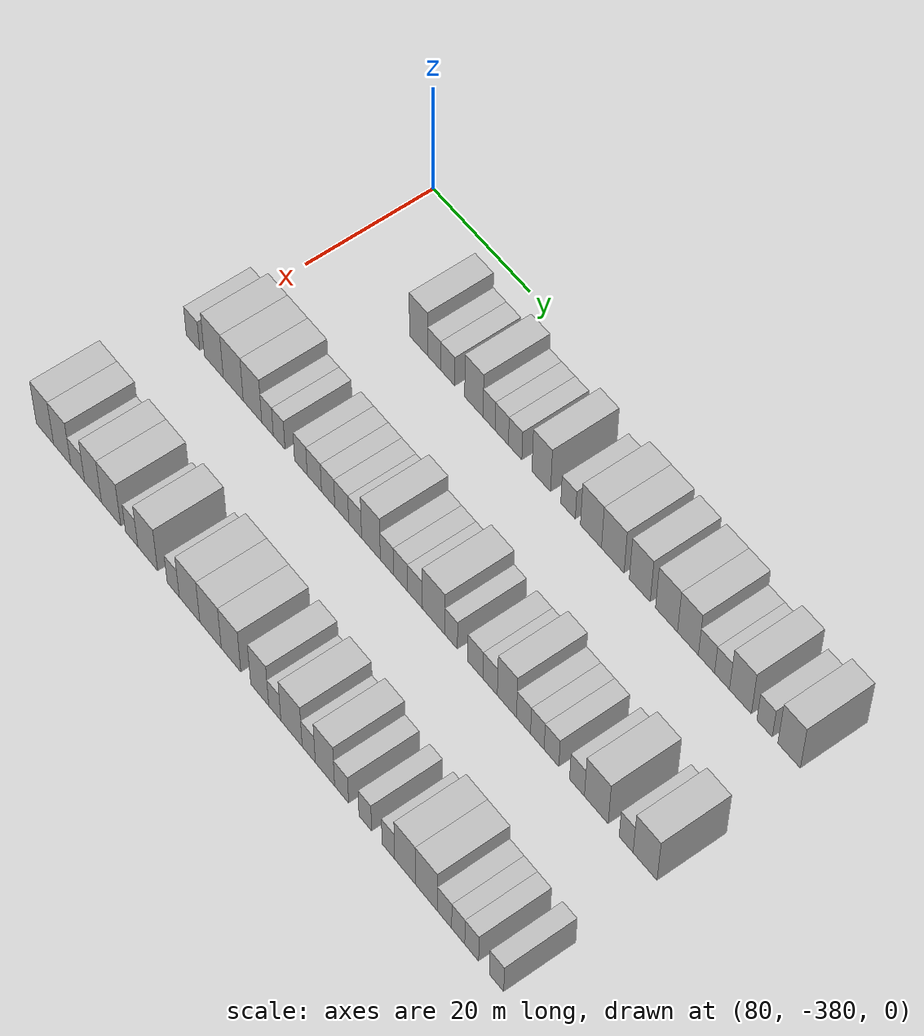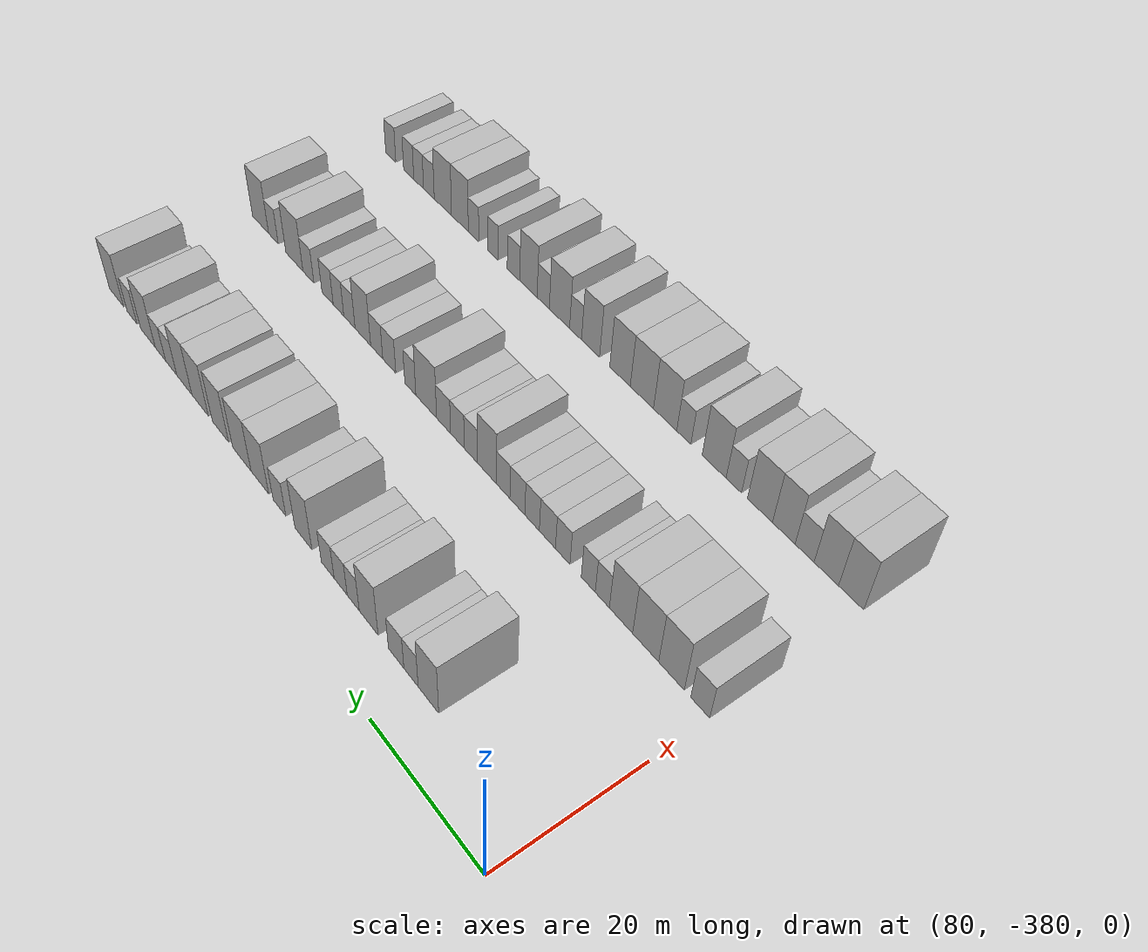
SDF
<sdf version="1.6">
 <world name="default">
  <model name="building_570">
   <static>1</static>
   <pose>91.0000 -361.6273 0 0.000000 0.000000 0.000000</pose>
   <link name="link">
    <pose>0 0 4.50 0 0 0</pose>
    <collision name="collision"><geometry><box><size>10.0000 3.7331 9.0000</size></box></geometry></collision>
    <visual name="visual">
     <cast_shadows>0</cast_shadows>
     <geometry><box><size>10.0000 3.7331 9.0000</size></box></geometry>
     <material>
      <script>
       <uri>model://HANNAS_wall/materials/scripts</uri>
       <uri>model://HANNAS_wall/materials/textures</uri>
       <name>vrc/HANNAS_wall</name>
      </script>
     </material>
    </visual>
   </link>
  </model>
  <model name="building_571">
   <static>1</static>
   <pose>91.0000 -358.4364 0 0.000000 0.000000 0.000000</pose>
   <link name="link">
    <pose>0 0 3.00 0 0 0</pose>
    <collision name="collision"><geometry><box><size>10.0000 2.6488 6.0000</size></box></geometry></collision>
    <visual name="visual">
     <cast_shadows>0</cast_shadows>
     <geometry><box><size>10.0000 2.6488 6.0000</size></box></geometry>
     <material>
      <script>
       <uri>model://HANNAS_wall/materials/scripts</uri>
       <uri>model://HANNAS_wall/materials/textures</uri>
       <name>vrc/HANNAS_wall</name>
      </script>
     </material>
    </visual>
   </link>
  </model>
  <model name="building_572">
   <static>1</static>
   <pose>91.0000 -355.6492 0 0.000000 0.000000 0.000000</pose>
   <link name="link">
    <pose>0 0 3.00 0 0 0</pose>
    <collision name="collision"><geometry><box><size>10.0000 2.9255 6.0000</size></box></geometry></collision>
    <visual name="visual">
     <cast_shadows>0</cast_shadows>
     <geometry><box><size>10.0000 2.9255 6.0000</size></box></geometry>
     <material>
      <script>
       <uri>model://HANNAS_wall/materials/scripts</uri>
       <uri>model://HANNAS_wall/materials/textures</uri>
       <name>vrc/HANNAS_wall</name>
      </script>
     </material>
    </visual>
   </link>
  </model>
  <model name="building_573">
   <static>1</static>
   <pose>91.0000 -350.3255 0 0.000000 0.000000 0.000000</pose>
   <link name="link">
    <pose>0 0 4.50 0 0 0</pose>
    <collision name="collision"><geometry><box><size>10.0000 3.7219 9.0000</size></box></geometry></collision>
    <visual name="visual">
     <cast_shadows>0</cast_shadows>
     <geometry><box><size>10.0000 3.7219 9.0000</size></box></geometry>
     <material>
      <script>
       <uri>model://HANNAS_wall/materials/scripts</uri>
       <uri>model://HANNAS_wall/materials/textures</uri>
       <name>vrc/HANNAS_wall</name>
      </script>
     </material>
    </visual>
   </link>
  </model>
  <model name="building_574">
   <static>1</static>
   <pose>91.0000 -347.2628 0 0.000000 0.000000 0.000000</pose>
   <link name="link">
    <pose>0 0 3.00 0 0 0</pose>
    <collision name="collision"><geometry><box><size>10.0000 2.4035 6.0000</size></box></geometry></collision>
    <visual name="visual">
     <cast_shadows>0</cast_shadows>
     <geometry><box><size>10.0000 2.4035 6.0000</size></box></geometry>
     <material>
      <script>
       <uri>model://HANNAS_wall/materials/scripts</uri>
       <uri>model://HANNAS_wall/materials/textures</uri>
       <name>vrc/HANNAS_wall</name>
      </script>
     </material>
    </visual>
   </link>
  </model>
  <model name="building_575">
   <static>1</static>
   <pose>91.0000 -344.7207 0 0.000000 0.000000 0.000000</pose>
   <link name="link">
    <pose>0 0 3.00 0 0 0</pose>
    <collision name="collision"><geometry><box><size>10.0000 2.6806 6.0000</size></box></geometry></collision>
    <visual name="visual">
     <cast_shadows>0</cast_shadows>
     <geometry><box><size>10.0000 2.6806 6.0000</size></box></geometry>
     <material>
      <script>
       <uri>model://HANNAS_wall/materials/scripts</uri>
       <uri>model://HANNAS_wall/materials/textures</uri>
       <name>vrc/HANNAS_wall</name>
      </script>
     </material>
    </visual>
   </link>
  </model>
  <model name="building_576">
   <static>1</static>
   <pose>91.0000 -342.0457 0 0.000000 0.000000 0.000000</pose>
   <link name="link">
    <pose>0 0 3.00 0 0 0</pose>
    <collision name="collision"><geometry><box><size>10.0000 2.6695 6.0000</size></box></geometry></collision>
    <visual name="visual">
     <cast_shadows>0</cast_shadows>
     <geometry><box><size>10.0000 2.6695 6.0000</size></box></geometry>
     <material>
      <script>
       <uri>model://HANNAS_wall/materials/scripts</uri>
       <uri>model://HANNAS_wall/materials/textures</uri>
       <name>vrc/HANNAS_wall</name>
      </script>
     </material>
    </visual>
   </link>
  </model>
  <model name="building_577">
   <static>1</static>
   <pose>91.0000 -336.8740 0 0.000000 0.000000 0.000000</pose>
   <link name="link">
    <pose>0 0 4.50 0 0 0</pose>
    <collision name="collision"><geometry><box><size>10.0000 3.6738 9.0000</size></box></geometry></collision>
    <visual name="visual">
     <cast_shadows>0</cast_shadows>
     <geometry><box><size>10.0000 3.6738 9.0000</size></box></geometry>
     <material>
      <script>
       <uri>model://HANNAS_wall/materials/scripts</uri>
       <uri>model://HANNAS_wall/materials/textures</uri>
       <name>vrc/HANNAS_wall</name>
      </script>
     </material>
    </visual>
   </link>
  </model>
  <model name="building_578">
   <static>1</static>
   <pose>91.0000 -331.6234 0 0.000000 0.000000 0.000000</pose>
   <link name="link">
    <pose>0 0 3.00 0 0 0</pose>
    <collision name="collision"><geometry><box><size>10.0000 2.8275 6.0000</size></box></geometry></collision>
    <visual name="visual">
     <cast_shadows>0</cast_shadows>
     <geometry><box><size>10.0000 2.8275 6.0000</size></box></geometry>
     <material>
      <script>
       <uri>model://HANNAS_wall/materials/scripts</uri>
       <uri>model://HANNAS_wall/materials/textures</uri>
       <name>vrc/HANNAS_wall</name>
      </script>
     </material>
    </visual>
   </link>
  </model>
  <model name="building_579">
   <static>1</static>
   <pose>91.0000 -327.1767 0 0.000000 0.000000 0.000000</pose>
   <link name="link">
    <pose>0 0 4.50 0 0 0</pose>
    <collision name="collision"><geometry><box><size>10.0000 4.0658 9.0000</size></box></geometry></collision>
    <visual name="visual">
     <cast_shadows>0</cast_shadows>
     <geometry><box><size>10.0000 4.0658 9.0000</size></box></geometry>
     <material>
      <script>
       <uri>model://HANNAS_wall/materials/scripts</uri>
       <uri>model://HANNAS_wall/materials/textures</uri>
       <name>vrc/HANNAS_wall</name>
      </script>
     </material>
    </visual>
   </link>
  </model>
  <model name="building_580">
   <static>1</static>
   <pose>91.0000 -322.9775 0 0.000000 0.000000 0.000000</pose>
   <link name="link">
    <pose>0 0 4.50 0 0 0</pose>
    <collision name="collision"><geometry><box><size>10.0000 4.3327 9.0000</size></box></geometry></collision>
    <visual name="visual">
     <cast_shadows>0</cast_shadows>
     <geometry><box><size>10.0000 4.3327 9.0000</size></box></geometry>
     <material>
      <script>
       <uri>model://HANNAS_wall/materials/scripts</uri>
       <uri>model://HANNAS_wall/materials/textures</uri>
       <name>vrc/HANNAS_wall</name>
      </script>
     </material>
    </visual>
   </link>
  </model>
  <model name="building_581">
   <static>1</static>
   <pose>91.0000 -317.8311 0 0.000000 0.000000 0.000000</pose>
   <link name="link">
    <pose>0 0 4.50 0 0 0</pose>
    <collision name="collision"><geometry><box><size>10.0000 3.9602 9.0000</size></box></geometry></collision>
    <visual name="visual">
     <cast_shadows>0</cast_shadows>
     <geometry><box><size>10.0000 3.9602 9.0000</size></box></geometry>
     <material>
      <script>
       <uri>model://HANNAS_wall/materials/scripts</uri>
       <uri>model://HANNAS_wall/materials/textures</uri>
       <name>vrc/HANNAS_wall</name>
      </script>
     </material>
    </visual>
   </link>
  </model>
  <model name="building_582">
   <static>1</static>
   <pose>91.0000 -312.7880 0 0.000000 0.000000 0.000000</pose>
   <link name="link">
    <pose>0 0 4.50 0 0 0</pose>
    <collision name="collision"><geometry><box><size>10.0000 4.1258 9.0000</size></box></geometry></collision>
    <visual name="visual">
     <cast_shadows>0</cast_shadows>
     <geometry><box><size>10.0000 4.1258 9.0000</size></box></geometry>
     <material>
      <script>
       <uri>model://HANNAS_wall/materials/scripts</uri>
       <uri>model://HANNAS_wall/materials/textures</uri>
       <name>vrc/HANNAS_wall</name>
      </script>
     </material>
    </visual>
   </link>
  </model>
  <model name="building_583">
   <static>1</static>
   <pose>91.0000 -308.7853 0 0.000000 0.000000 0.000000</pose>
   <link name="link">
    <pose>0 0 4.50 0 0 0</pose>
    <collision name="collision"><geometry><box><size>10.0000 3.8796 9.0000</size></box></geometry></collision>
    <visual name="visual">
     <cast_shadows>0</cast_shadows>
     <geometry><box><size>10.0000 3.8796 9.0000</size></box></geometry>
     <material>
      <script>
       <uri>model://HANNAS_wall/materials/scripts</uri>
       <uri>model://HANNAS_wall/materials/textures</uri>
       <name>vrc/HANNAS_wall</name>
      </script>
     </material>
    </visual>
   </link>
  </model>
  <model name="building_584">
   <static>1</static>
   <pose>91.0000 -305.3501 0 0.000000 0.000000 0.000000</pose>
   <link name="link">
    <pose>0 0 3.00 0 0 0</pose>
    <collision name="collision"><geometry><box><size>10.0000 2.9909 6.0000</size></box></geometry></collision>
    <visual name="visual">
     <cast_shadows>0</cast_shadows>
     <geometry><box><size>10.0000 2.9909 6.0000</size></box></geometry>
     <material>
      <script>
       <uri>model://HANNAS_wall/materials/scripts</uri>
       <uri>model://HANNAS_wall/materials/textures</uri>
       <name>vrc/HANNAS_wall</name>
      </script>
     </material>
    </visual>
   </link>
  </model>
  <model name="building_585">
   <static>1</static>
   <pose>91.0000 -302.4818 0 0.000000 0.000000 0.000000</pose>
   <link name="link">
    <pose>0 0 3.00 0 0 0</pose>
    <collision name="collision"><geometry><box><size>10.0000 2.7457 6.0000</size></box></geometry></collision>
    <visual name="visual">
     <cast_shadows>0</cast_shadows>
     <geometry><box><size>10.0000 2.7457 6.0000</size></box></geometry>
     <material>
      <script>
       <uri>model://HANNAS_wall/materials/scripts</uri>
       <uri>model://HANNAS_wall/materials/textures</uri>
       <name>vrc/HANNAS_wall</name>
      </script>
     </material>
    </visual>
   </link>
  </model>
  <model name="building_586">
   <static>1</static>
   <pose>91.0000 -299.1083 0 0.000000 0.000000 0.000000</pose>
   <link name="link">
    <pose>0 0 4.50 0 0 0</pose>
    <collision name="collision"><geometry><box><size>10.0000 4.0012 9.0000</size></box></geometry></collision>
    <visual name="visual">
     <cast_shadows>0</cast_shadows>
     <geometry><box><size>10.0000 4.0012 9.0000</size></box></geometry>
     <material>
      <script>
       <uri>model://HANNAS_wall/materials/scripts</uri>
       <uri>model://HANNAS_wall/materials/textures</uri>
       <name>vrc/HANNAS_wall</name>
      </script>
     </material>
    </visual>
   </link>
  </model>
  <model name="building_587">
   <static>1</static>
   <pose>91.0000 -294.7158 0 0.000000 0.000000 0.000000</pose>
   <link name="link">
    <pose>0 0 3.00 0 0 0</pose>
    <collision name="collision"><geometry><box><size>10.0000 2.7839 6.0000</size></box></geometry></collision>
    <visual name="visual">
     <cast_shadows>0</cast_shadows>
     <geometry><box><size>10.0000 2.7839 6.0000</size></box></geometry>
     <material>
      <script>
       <uri>model://HANNAS_wall/materials/scripts</uri>
       <uri>model://HANNAS_wall/materials/textures</uri>
       <name>vrc/HANNAS_wall</name>
      </script>
     </material>
    </visual>
   </link>
  </model>
  <model name="building_588">
   <static>1</static>
   <pose>91.0000 -290.3034 0 0.000000 0.000000 0.000000</pose>
   <link name="link">
    <pose>0 0 4.50 0 0 0</pose>
    <collision name="collision"><geometry><box><size>10.0000 4.0408 9.0000</size></box></geometry></collision>
    <visual name="visual">
     <cast_shadows>0</cast_shadows>
     <geometry><box><size>10.0000 4.0408 9.0000</size></box></geometry>
     <material>
      <script>
       <uri>model://HANNAS_wall/materials/scripts</uri>
       <uri>model://HANNAS_wall/materials/textures</uri>
       <name>vrc/HANNAS_wall</name>
      </script>
     </material>
    </visual>
   </link>
  </model>
  <model name="building_761">
   <static>1</static>
   <pose>113.0000 -378.5383 0 0.000000 0.000000 0.000000</pose>
   <link name="link">
    <pose>0 0 3.00 0 0 0</pose>
    <collision name="collision"><geometry><box><size>10.0000 2.9233 6.0000</size></box></geometry></collision>
    <visual name="visual">
     <cast_shadows>0</cast_shadows>
     <geometry><box><size>10.0000 2.9233 6.0000</size></box></geometry>
     <material>
      <script>
       <uri>model://HANNAS_wall/materials/scripts</uri>
       <uri>model://HANNAS_wall/materials/textures</uri>
       <name>vrc/HANNAS_wall</name>
      </script>
     </material>
    </visual>
   </link>
  </model>
  <model name="building_762">
   <static>1</static>
   <pose>113.0000 -374.0406 0 0.000000 0.000000 0.000000</pose>
   <link name="link">
    <pose>0 0 4.50 0 0 0</pose>
    <collision name="collision"><geometry><box><size>10.0000 4.0721 9.0000</size></box></geometry></collision>
    <visual name="visual">
     <cast_shadows>0</cast_shadows>
     <geometry><box><size>10.0000 4.0721 9.0000</size></box></geometry>
     <material>
      <script>
       <uri>model://HANNAS_wall/materials/scripts</uri>
       <uri>model://HANNAS_wall/materials/textures</uri>
       <name>vrc/HANNAS_wall</name>
      </script>
     </material>
    </visual>
   </link>
  </model>
  <model name="building_763">
   <static>1</static>
   <pose>113.0000 -369.8807 0 0.000000 0.000000 0.000000</pose>
   <link name="link">
    <pose>0 0 4.50 0 0 0</pose>
    <collision name="collision"><geometry><box><size>10.0000 4.2477 9.0000</size></box></geometry></collision>
    <visual name="visual">
     <cast_shadows>0</cast_shadows>
     <geometry><box><size>10.0000 4.2477 9.0000</size></box></geometry>
     <material>
      <script>
       <uri>model://HANNAS_wall/materials/scripts</uri>
       <uri>model://HANNAS_wall/materials/textures</uri>
       <name>vrc/HANNAS_wall</name>
      </script>
     </material>
    </visual>
   </link>
  </model>
  <model name="building_764">
   <static>1</static>
   <pose>113.0000 -365.7957 0 0.000000 0.000000 0.000000</pose>
   <link name="link">
    <pose>0 0 4.50 0 0 0</pose>
    <collision name="collision"><geometry><box><size>10.0000 3.9224 9.0000</size></box></geometry></collision>
    <visual name="visual">
     <cast_shadows>0</cast_shadows>
     <geometry><box><size>10.0000 3.9224 9.0000</size></box></geometry>
     <material>
      <script>
       <uri>model://HANNAS_wall/materials/scripts</uri>
       <uri>model://HANNAS_wall/materials/textures</uri>
       <name>vrc/HANNAS_wall</name>
      </script>
     </material>
    </visual>
   </link>
  </model>
  <model name="building_765">
   <static>1</static>
   <pose>113.0000 -362.6208 0 0.000000 0.000000 0.000000</pose>
   <link name="link">
    <pose>0 0 3.00 0 0 0</pose>
    <collision name="collision"><geometry><box><size>10.0000 2.4275 6.0000</size></box></geometry></collision>
    <visual name="visual">
     <cast_shadows>0</cast_shadows>
     <geometry><box><size>10.0000 2.4275 6.0000</size></box></geometry>
     <material>
      <script>
       <uri>model://HANNAS_wall/materials/scripts</uri>
       <uri>model://HANNAS_wall/materials/textures</uri>
       <name>vrc/HANNAS_wall</name>
      </script>
     </material>
    </visual>
   </link>
  </model>
  <model name="building_766">
   <static>1</static>
   <pose>113.0000 -360.1863 0 0.000000 0.000000 0.000000</pose>
   <link name="link">
    <pose>0 0 3.00 0 0 0</pose>
    <collision name="collision"><geometry><box><size>10.0000 2.4415 6.0000</size></box></geometry></collision>
    <visual name="visual">
     <cast_shadows>0</cast_shadows>
     <geometry><box><size>10.0000 2.4415 6.0000</size></box></geometry>
     <material>
      <script>
       <uri>model://HANNAS_wall/materials/scripts</uri>
       <uri>model://HANNAS_wall/materials/textures</uri>
       <name>vrc/HANNAS_wall</name>
      </script>
     </material>
    </visual>
   </link>
  </model>
  <model name="building_767">
   <static>1</static>
   <pose>113.0000 -355.6576 0 0.000000 0.000000 0.000000</pose>
   <link name="link">
    <pose>0 0 3.00 0 0 0</pose>
    <collision name="collision"><geometry><box><size>10.0000 2.6159 6.0000</size></box></geometry></collision>
    <visual name="visual">
     <cast_shadows>0</cast_shadows>
     <geometry><box><size>10.0000 2.6159 6.0000</size></box></geometry>
     <material>
      <script>
       <uri>model://HANNAS_wall/materials/scripts</uri>
       <uri>model://HANNAS_wall/materials/textures</uri>
       <name>vrc/HANNAS_wall</name>
      </script>
     </material>
    </visual>
   </link>
  </model>
  <model name="building_768">
   <static>1</static>
   <pose>113.0000 -352.8736 0 0.000000 0.000000 0.000000</pose>
   <link name="link">
    <pose>0 0 3.00 0 0 0</pose>
    <collision name="collision"><geometry><box><size>10.0000 2.9521 6.0000</size></box></geometry></collision>
    <visual name="visual">
     <cast_shadows>0</cast_shadows>
     <geometry><box><size>10.0000 2.9521 6.0000</size></box></geometry>
     <material>
      <script>
       <uri>model://HANNAS_wall/materials/scripts</uri>
       <uri>model://HANNAS_wall/materials/textures</uri>
       <name>vrc/HANNAS_wall</name>
      </script>
     </material>
    </visual>
   </link>
  </model>
  <model name="building_769">
   <static>1</static>
   <pose>113.0000 -350.0377 0 0.000000 0.000000 0.000000</pose>
   <link name="link">
    <pose>0 0 3.00 0 0 0</pose>
    <collision name="collision"><geometry><box><size>10.0000 2.7197 6.0000</size></box></geometry></collision>
    <visual name="visual">
     <cast_shadows>0</cast_shadows>
     <geometry><box><size>10.0000 2.7197 6.0000</size></box></geometry>
     <material>
      <script>
       <uri>model://HANNAS_wall/materials/scripts</uri>
       <uri>model://HANNAS_wall/materials/textures</uri>
       <name>vrc/HANNAS_wall</name>
      </script>
     </material>
    </visual>
   </link>
  </model>
  <model name="building_770">
   <static>1</static>
   <pose>113.0000 -347.2569 0 0.000000 0.000000 0.000000</pose>
   <link name="link">
    <pose>0 0 3.00 0 0 0</pose>
    <collision name="collision"><geometry><box><size>10.0000 2.8419 6.0000</size></box></geometry></collision>
    <visual name="visual">
     <cast_shadows>0</cast_shadows>
     <geometry><box><size>10.0000 2.8419 6.0000</size></box></geometry>
     <material>
      <script>
       <uri>model://HANNAS_wall/materials/scripts</uri>
       <uri>model://HANNAS_wall/materials/textures</uri>
       <name>vrc/HANNAS_wall</name>
      </script>
     </material>
    </visual>
   </link>
  </model>
  <model name="building_771">
   <static>1</static>
   <pose>113.0000 -344.5272 0 0.000000 0.000000 0.000000</pose>
   <link name="link">
    <pose>0 0 3.00 0 0 0</pose>
    <collision name="collision"><geometry><box><size>10.0000 2.6175 6.0000</size></box></geometry></collision>
    <visual name="visual">
     <cast_shadows>0</cast_shadows>
     <geometry><box><size>10.0000 2.6175 6.0000</size></box></geometry>
     <material>
      <script>
       <uri>model://HANNAS_wall/materials/scripts</uri>
       <uri>model://HANNAS_wall/materials/textures</uri>
       <name>vrc/HANNAS_wall</name>
      </script>
     </material>
    </visual>
   </link>
  </model>
  <model name="building_772">
   <static>1</static>
   <pose>113.0000 -341.3322 0 0.000000 0.000000 0.000000</pose>
   <link name="link">
    <pose>0 0 4.50 0 0 0</pose>
    <collision name="collision"><geometry><box><size>10.0000 3.7724 9.0000</size></box></geometry></collision>
    <visual name="visual">
     <cast_shadows>0</cast_shadows>
     <geometry><box><size>10.0000 3.7724 9.0000</size></box></geometry>
     <material>
      <script>
       <uri>model://HANNAS_wall/materials/scripts</uri>
       <uri>model://HANNAS_wall/materials/textures</uri>
       <name>vrc/HANNAS_wall</name>
      </script>
     </material>
    </visual>
   </link>
  </model>
  <model name="building_773">
   <static>1</static>
   <pose>113.0000 -338.1220 0 0.000000 0.000000 0.000000</pose>
   <link name="link">
    <pose>0 0 3.00 0 0 0</pose>
    <collision name="collision"><geometry><box><size>10.0000 2.6480 6.0000</size></box></geometry></collision>
    <visual name="visual">
     <cast_shadows>0</cast_shadows>
     <geometry><box><size>10.0000 2.6480 6.0000</size></box></geometry>
     <material>
      <script>
       <uri>model://HANNAS_wall/materials/scripts</uri>
       <uri>model://HANNAS_wall/materials/textures</uri>
       <name>vrc/HANNAS_wall</name>
      </script>
     </material>
    </visual>
   </link>
  </model>
  <model name="building_774">
   <static>1</static>
   <pose>113.0000 -335.3938 0 0.000000 0.000000 0.000000</pose>
   <link name="link">
    <pose>0 0 3.00 0 0 0</pose>
    <collision name="collision"><geometry><box><size>10.0000 2.8083 6.0000</size></box></geometry></collision>
    <visual name="visual">
     <cast_shadows>0</cast_shadows>
     <geometry><box><size>10.0000 2.8083 6.0000</size></box></geometry>
     <material>
      <script>
       <uri>model://HANNAS_wall/materials/scripts</uri>
       <uri>model://HANNAS_wall/materials/textures</uri>
       <name>vrc/HANNAS_wall</name>
      </script>
     </material>
    </visual>
   </link>
  </model>
  <model name="building_775">
   <static>1</static>
   <pose>113.0000 -332.5330 0 0.000000 0.000000 0.000000</pose>
   <link name="link">
    <pose>0 0 3.00 0 0 0</pose>
    <collision name="collision"><geometry><box><size>10.0000 2.9133 6.0000</size></box></geometry></collision>
    <visual name="visual">
     <cast_shadows>0</cast_shadows>
     <geometry><box><size>10.0000 2.9133 6.0000</size></box></geometry>
     <material>
      <script>
       <uri>model://HANNAS_wall/materials/scripts</uri>
       <uri>model://HANNAS_wall/materials/textures</uri>
       <name>vrc/HANNAS_wall</name>
      </script>
     </material>
    </visual>
   </link>
  </model>
  <model name="building_776">
   <static>1</static>
   <pose>113.0000 -328.8530 0 0.000000 0.000000 0.000000</pose>
   <link name="link">
    <pose>0 0 4.50 0 0 0</pose>
    <collision name="collision"><geometry><box><size>10.0000 4.4467 9.0000</size></box></geometry></collision>
    <visual name="visual">
     <cast_shadows>0</cast_shadows>
     <geometry><box><size>10.0000 4.4467 9.0000</size></box></geometry>
     <material>
      <script>
       <uri>model://HANNAS_wall/materials/scripts</uri>
       <uri>model://HANNAS_wall/materials/textures</uri>
       <name>vrc/HANNAS_wall</name>
      </script>
     </material>
    </visual>
   </link>
  </model>
  <model name="building_777">
   <static>1</static>
   <pose>113.0000 -325.4277 0 0.000000 0.000000 0.000000</pose>
   <link name="link">
    <pose>0 0 3.00 0 0 0</pose>
    <collision name="collision"><geometry><box><size>10.0000 2.4039 6.0000</size></box></geometry></collision>
    <visual name="visual">
     <cast_shadows>0</cast_shadows>
     <geometry><box><size>10.0000 2.4039 6.0000</size></box></geometry>
     <material>
      <script>
       <uri>model://HANNAS_wall/materials/scripts</uri>
       <uri>model://HANNAS_wall/materials/textures</uri>
       <name>vrc/HANNAS_wall</name>
      </script>
     </material>
    </visual>
   </link>
  </model>
  <model name="building_778">
   <static>1</static>
   <pose>113.0000 -320.7574 0 0.000000 0.000000 0.000000</pose>
   <link name="link">
    <pose>0 0 3.00 0 0 0</pose>
    <collision name="collision"><geometry><box><size>10.0000 2.9366 6.0000</size></box></geometry></collision>
    <visual name="visual">
     <cast_shadows>0</cast_shadows>
     <geometry><box><size>10.0000 2.9366 6.0000</size></box></geometry>
     <material>
      <script>
       <uri>model://HANNAS_wall/materials/scripts</uri>
       <uri>model://HANNAS_wall/materials/textures</uri>
       <name>vrc/HANNAS_wall</name>
      </script>
     </material>
    </visual>
   </link>
  </model>
  <model name="building_779">
   <static>1</static>
   <pose>113.0000 -317.9077 0 0.000000 0.000000 0.000000</pose>
   <link name="link">
    <pose>0 0 3.00 0 0 0</pose>
    <collision name="collision"><geometry><box><size>10.0000 2.7630 6.0000</size></box></geometry></collision>
    <visual name="visual">
     <cast_shadows>0</cast_shadows>
     <geometry><box><size>10.0000 2.7630 6.0000</size></box></geometry>
     <material>
      <script>
       <uri>model://HANNAS_wall/materials/scripts</uri>
       <uri>model://HANNAS_wall/materials/textures</uri>
       <name>vrc/HANNAS_wall</name>
      </script>
     </material>
    </visual>
   </link>
  </model>
  <model name="building_780">
   <static>1</static>
   <pose>113.0000 -314.7034 0 0.000000 0.000000 0.000000</pose>
   <link name="link">
    <pose>0 0 4.50 0 0 0</pose>
    <collision name="collision"><geometry><box><size>10.0000 3.6455 9.0000</size></box></geometry></collision>
    <visual name="visual">
     <cast_shadows>0</cast_shadows>
     <geometry><box><size>10.0000 3.6455 9.0000</size></box></geometry>
     <material>
      <script>
       <uri>model://HANNAS_wall/materials/scripts</uri>
       <uri>model://HANNAS_wall/materials/textures</uri>
       <name>vrc/HANNAS_wall</name>
      </script>
     </material>
    </visual>
   </link>
  </model>
  <model name="building_781">
   <static>1</static>
   <pose>113.0000 -311.5435 0 0.000000 0.000000 0.000000</pose>
   <link name="link">
    <pose>0 0 3.00 0 0 0</pose>
    <collision name="collision"><geometry><box><size>10.0000 2.6745 6.0000</size></box></geometry></collision>
    <visual name="visual">
     <cast_shadows>0</cast_shadows>
     <geometry><box><size>10.0000 2.6745 6.0000</size></box></geometry>
     <material>
      <script>
       <uri>model://HANNAS_wall/materials/scripts</uri>
       <uri>model://HANNAS_wall/materials/textures</uri>
       <name>vrc/HANNAS_wall</name>
      </script>
     </material>
    </visual>
   </link>
  </model>
  <model name="building_782">
   <static>1</static>
   <pose>113.0000 -308.9271 0 0.000000 0.000000 0.000000</pose>
   <link name="link">
    <pose>0 0 3.00 0 0 0</pose>
    <collision name="collision"><geometry><box><size>10.0000 2.5583 6.0000</size></box></geometry></collision>
    <visual name="visual">
     <cast_shadows>0</cast_shadows>
     <geometry><box><size>10.0000 2.5583 6.0000</size></box></geometry>
     <material>
      <script>
       <uri>model://HANNAS_wall/materials/scripts</uri>
       <uri>model://HANNAS_wall/materials/textures</uri>
       <name>vrc/HANNAS_wall</name>
      </script>
     </material>
    </visual>
   </link>
  </model>
  <model name="building_783">
   <static>1</static>
   <pose>113.0000 -306.2681 0 0.000000 0.000000 0.000000</pose>
   <link name="link">
    <pose>0 0 3.00 0 0 0</pose>
    <collision name="collision"><geometry><box><size>10.0000 2.7597 6.0000</size></box></geometry></collision>
    <visual name="visual">
     <cast_shadows>0</cast_shadows>
     <geometry><box><size>10.0000 2.7597 6.0000</size></box></geometry>
     <material>
      <script>
       <uri>model://HANNAS_wall/materials/scripts</uri>
       <uri>model://HANNAS_wall/materials/textures</uri>
       <name>vrc/HANNAS_wall</name>
      </script>
     </material>
    </visual>
   </link>
  </model>
  <model name="building_784">
   <static>1</static>
   <pose>113.0000 -301.5092 0 0.000000 0.000000 0.000000</pose>
   <link name="link">
    <pose>0 0 3.00 0 0 0</pose>
    <collision name="collision"><geometry><box><size>10.0000 2.7580 6.0000</size></box></geometry></collision>
    <visual name="visual">
     <cast_shadows>0</cast_shadows>
     <geometry><box><size>10.0000 2.7580 6.0000</size></box></geometry>
     <material>
      <script>
       <uri>model://HANNAS_wall/materials/scripts</uri>
       <uri>model://HANNAS_wall/materials/textures</uri>
       <name>vrc/HANNAS_wall</name>
      </script>
     </material>
    </visual>
   </link>
  </model>
  <model name="building_785">
   <static>1</static>
   <pose>113.0000 -297.9383 0 0.000000 0.000000 0.000000</pose>
   <link name="link">
    <pose>0 0 4.50 0 0 0</pose>
    <collision name="collision"><geometry><box><size>10.0000 4.3838 9.0000</size></box></geometry></collision>
    <visual name="visual">
     <cast_shadows>0</cast_shadows>
     <geometry><box><size>10.0000 4.3838 9.0000</size></box></geometry>
     <material>
      <script>
       <uri>model://HANNAS_wall/materials/scripts</uri>
       <uri>model://HANNAS_wall/materials/textures</uri>
       <name>vrc/HANNAS_wall</name>
      </script>
     </material>
    </visual>
   </link>
  </model>
  <model name="building_786">
   <static>1</static>
   <pose>113.0000 -292.4770 0 0.000000 0.000000 0.000000</pose>
   <link name="link">
    <pose>0 0 3.00 0 0 0</pose>
    <collision name="collision"><geometry><box><size>10.0000 2.5388 6.0000</size></box></geometry></collision>
    <visual name="visual">
     <cast_shadows>0</cast_shadows>
     <geometry><box><size>10.0000 2.5388 6.0000</size></box></geometry>
     <material>
      <script>
       <uri>model://HANNAS_wall/materials/scripts</uri>
       <uri>model://HANNAS_wall/materials/textures</uri>
       <name>vrc/HANNAS_wall</name>
      </script>
     </material>
    </visual>
   </link>
  </model>
  <model name="building_787">
   <static>1</static>
   <pose>113.0000 -289.0398 0 0.000000 0.000000 0.000000</pose>
   <link name="link">
    <pose>0 0 4.50 0 0 0</pose>
    <collision name="collision"><geometry><box><size>10.0000 4.3355 9.0000</size></box></geometry></collision>
    <visual name="visual">
     <cast_shadows>0</cast_shadows>
     <geometry><box><size>10.0000 4.3355 9.0000</size></box></geometry>
     <material>
      <script>
       <uri>model://HANNAS_wall/materials/scripts</uri>
       <uri>model://HANNAS_wall/materials/textures</uri>
       <name>vrc/HANNAS_wall</name>
      </script>
     </material>
    </visual>
   </link>
  </model>
  <model name="building_957">
   <static>1</static>
   <pose>135.0000 -378.1057 0 0.000000 0.000000 0.000000</pose>
   <link name="link">
    <pose>0 0 4.50 0 0 0</pose>
    <collision name="collision"><geometry><box><size>10.0000 3.7886 9.0000</size></box></geometry></collision>
    <visual name="visual">
     <cast_shadows>0</cast_shadows>
     <geometry><box><size>10.0000 3.7886 9.0000</size></box></geometry>
     <material>
      <script>
       <uri>model://HANNAS_wall/materials/scripts</uri>
       <uri>model://HANNAS_wall/materials/textures</uri>
       <name>vrc/HANNAS_wall</name>
      </script>
     </material>
    </visual>
   </link>
  </model>
  <model name="building_958">
   <static>1</static>
   <pose>135.0000 -374.3260 0 0.000000 0.000000 0.000000</pose>
   <link name="link">
    <pose>0 0 4.50 0 0 0</pose>
    <collision name="collision"><geometry><box><size>10.0000 3.7708 9.0000</size></box></geometry></collision>
    <visual name="visual">
     <cast_shadows>0</cast_shadows>
     <geometry><box><size>10.0000 3.7708 9.0000</size></box></geometry>
     <material>
      <script>
       <uri>model://HANNAS_wall/materials/scripts</uri>
       <uri>model://HANNAS_wall/materials/textures</uri>
       <name>vrc/HANNAS_wall</name>
      </script>
     </material>
    </visual>
   </link>
  </model>
  <model name="building_959">
   <static>1</static>
   <pose>135.0000 -370.9457 0 0.000000 0.000000 0.000000</pose>
   <link name="link">
    <pose>0 0 3.00 0 0 0</pose>
    <collision name="collision"><geometry><box><size>10.0000 2.9897 6.0000</size></box></geometry></collision>
    <visual name="visual">
     <cast_shadows>0</cast_shadows>
     <geometry><box><size>10.0000 2.9897 6.0000</size></box></geometry>
     <material>
      <script>
       <uri>model://HANNAS_wall/materials/scripts</uri>
       <uri>model://HANNAS_wall/materials/textures</uri>
       <name>vrc/HANNAS_wall</name>
      </script>
     </material>
    </visual>
   </link>
  </model>
  <model name="building_960">
   <static>1</static>
   <pose>135.0000 -367.6288 0 0.000000 0.000000 0.000000</pose>
   <link name="link">
    <pose>0 0 4.50 0 0 0</pose>
    <collision name="collision"><geometry><box><size>10.0000 3.6441 9.0000</size></box></geometry></collision>
    <visual name="visual">
     <cast_shadows>0</cast_shadows>
     <geometry><box><size>10.0000 3.6441 9.0000</size></box></geometry>
     <material>
      <script>
       <uri>model://HANNAS_wall/materials/scripts</uri>
       <uri>model://HANNAS_wall/materials/textures</uri>
       <name>vrc/HANNAS_wall</name>
      </script>
     </material>
    </visual>
   </link>
  </model>
  <model name="building_961">
   <static>1</static>
   <pose>135.0000 -363.7425 0 0.000000 0.000000 0.000000</pose>
   <link name="link">
    <pose>0 0 4.50 0 0 0</pose>
    <collision name="collision"><geometry><box><size>10.0000 4.1286 9.0000</size></box></geometry></collision>
    <visual name="visual">
     <cast_shadows>0</cast_shadows>
     <geometry><box><size>10.0000 4.1286 9.0000</size></box></geometry>
     <material>
      <script>
       <uri>model://HANNAS_wall/materials/scripts</uri>
       <uri>model://HANNAS_wall/materials/textures</uri>
       <name>vrc/HANNAS_wall</name>
      </script>
     </material>
    </visual>
   </link>
  </model>
  <model name="building_962">
   <static>1</static>
   <pose>135.0000 -359.3689 0 0.000000 0.000000 0.000000</pose>
   <link name="link">
    <pose>0 0 3.00 0 0 0</pose>
    <collision name="collision"><geometry><box><size>10.0000 2.6186 6.0000</size></box></geometry></collision>
    <visual name="visual">
     <cast_shadows>0</cast_shadows>
     <geometry><box><size>10.0000 2.6186 6.0000</size></box></geometry>
     <material>
      <script>
       <uri>model://HANNAS_wall/materials/scripts</uri>
       <uri>model://HANNAS_wall/materials/textures</uri>
       <name>vrc/HANNAS_wall</name>
      </script>
     </material>
    </visual>
   </link>
  </model>
  <model name="building_963">
   <static>1</static>
   <pose>135.0000 -355.9771 0 0.000000 0.000000 0.000000</pose>
   <link name="link">
    <pose>0 0 4.50 0 0 0</pose>
    <collision name="collision"><geometry><box><size>10.0000 4.1650 9.0000</size></box></geometry></collision>
    <visual name="visual">
     <cast_shadows>0</cast_shadows>
     <geometry><box><size>10.0000 4.1650 9.0000</size></box></geometry>
     <material>
      <script>
       <uri>model://HANNAS_wall/materials/scripts</uri>
       <uri>model://HANNAS_wall/materials/textures</uri>
       <name>vrc/HANNAS_wall</name>
      </script>
     </material>
    </visual>
   </link>
  </model>
  <model name="building_964">
   <static>1</static>
   <pose>135.0000 -350.6250 0 0.000000 0.000000 0.000000</pose>
   <link name="link">
    <pose>0 0 3.00 0 0 0</pose>
    <collision name="collision"><geometry><box><size>10.0000 2.5391 6.0000</size></box></geometry></collision>
    <visual name="visual">
     <cast_shadows>0</cast_shadows>
     <geometry><box><size>10.0000 2.5391 6.0000</size></box></geometry>
     <material>
      <script>
       <uri>model://HANNAS_wall/materials/scripts</uri>
       <uri>model://HANNAS_wall/materials/textures</uri>
       <name>vrc/HANNAS_wall</name>
      </script>
     </material>
    </visual>
   </link>
  </model>
  <model name="building_965">
   <static>1</static>
   <pose>135.0000 -347.2286 0 0.000000 0.000000 0.000000</pose>
   <link name="link">
    <pose>0 0 4.50 0 0 0</pose>
    <collision name="collision"><geometry><box><size>10.0000 4.2538 9.0000</size></box></geometry></collision>
    <visual name="visual">
     <cast_shadows>0</cast_shadows>
     <geometry><box><size>10.0000 4.2538 9.0000</size></box></geometry>
     <material>
      <script>
       <uri>model://HANNAS_wall/materials/scripts</uri>
       <uri>model://HANNAS_wall/materials/textures</uri>
       <name>vrc/HANNAS_wall</name>
      </script>
     </material>
    </visual>
   </link>
  </model>
  <model name="building_966">
   <static>1</static>
   <pose>135.0000 -342.9043 0 0.000000 0.000000 0.000000</pose>
   <link name="link">
    <pose>0 0 4.50 0 0 0</pose>
    <collision name="collision"><geometry><box><size>10.0000 4.3948 9.0000</size></box></geometry></collision>
    <visual name="visual">
     <cast_shadows>0</cast_shadows>
     <geometry><box><size>10.0000 4.3948 9.0000</size></box></geometry>
     <material>
      <script>
       <uri>model://HANNAS_wall/materials/scripts</uri>
       <uri>model://HANNAS_wall/materials/textures</uri>
       <name>vrc/HANNAS_wall</name>
      </script>
     </material>
    </visual>
   </link>
  </model>
  <model name="building_967">
   <static>1</static>
   <pose>135.0000 -338.7249 0 0.000000 0.000000 0.000000</pose>
   <link name="link">
    <pose>0 0 4.50 0 0 0</pose>
    <collision name="collision"><geometry><box><size>10.0000 3.9640 9.0000</size></box></geometry></collision>
    <visual name="visual">
     <cast_shadows>0</cast_shadows>
     <geometry><box><size>10.0000 3.9640 9.0000</size></box></geometry>
     <material>
      <script>
       <uri>model://HANNAS_wall/materials/scripts</uri>
       <uri>model://HANNAS_wall/materials/textures</uri>
       <name>vrc/HANNAS_wall</name>
      </script>
     </material>
    </visual>
   </link>
  </model>
  <model name="building_968">
   <static>1</static>
   <pose>135.0000 -332.9310 0 0.000000 0.000000 0.000000</pose>
   <link name="link">
    <pose>0 0 4.50 0 0 0</pose>
    <collision name="collision"><geometry><box><size>10.0000 3.6239 9.0000</size></box></geometry></collision>
    <visual name="visual">
     <cast_shadows>0</cast_shadows>
     <geometry><box><size>10.0000 3.6239 9.0000</size></box></geometry>
     <material>
      <script>
       <uri>model://HANNAS_wall/materials/scripts</uri>
       <uri>model://HANNAS_wall/materials/textures</uri>
       <name>vrc/HANNAS_wall</name>
      </script>
     </material>
    </visual>
   </link>
  </model>
  <model name="building_969">
   <static>1</static>
   <pose>135.0000 -329.9074 0 0.000000 0.000000 0.000000</pose>
   <link name="link">
    <pose>0 0 3.00 0 0 0</pose>
    <collision name="collision"><geometry><box><size>10.0000 2.4233 6.0000</size></box></geometry></collision>
    <visual name="visual">
     <cast_shadows>0</cast_shadows>
     <geometry><box><size>10.0000 2.4233 6.0000</size></box></geometry>
     <material>
      <script>
       <uri>model://HANNAS_wall/materials/scripts</uri>
       <uri>model://HANNAS_wall/materials/textures</uri>
       <name>vrc/HANNAS_wall</name>
      </script>
     </material>
    </visual>
   </link>
  </model>
  <model name="building_970">
   <static>1</static>
   <pose>135.0000 -326.5841 0 0.000000 0.000000 0.000000</pose>
   <link name="link">
    <pose>0 0 4.50 0 0 0</pose>
    <collision name="collision"><geometry><box><size>10.0000 4.2232 9.0000</size></box></geometry></collision>
    <visual name="visual">
     <cast_shadows>0</cast_shadows>
     <geometry><box><size>10.0000 4.2232 9.0000</size></box></geometry>
     <material>
      <script>
       <uri>model://HANNAS_wall/materials/scripts</uri>
       <uri>model://HANNAS_wall/materials/textures</uri>
       <name>vrc/HANNAS_wall</name>
      </script>
     </material>
    </visual>
   </link>
  </model>
  <model name="building_971">
   <static>1</static>
   <pose>135.0000 -323.1771 0 0.000000 0.000000 0.000000</pose>
   <link name="link">
    <pose>0 0 3.00 0 0 0</pose>
    <collision name="collision"><geometry><box><size>10.0000 2.5908 6.0000</size></box></geometry></collision>
    <visual name="visual">
     <cast_shadows>0</cast_shadows>
     <geometry><box><size>10.0000 2.5908 6.0000</size></box></geometry>
     <material>
      <script>
       <uri>model://HANNAS_wall/materials/scripts</uri>
       <uri>model://HANNAS_wall/materials/textures</uri>
       <name>vrc/HANNAS_wall</name>
      </script>
     </material>
    </visual>
   </link>
  </model>
  <model name="building_972">
   <static>1</static>
   <pose>135.0000 -319.9976 0 0.000000 0.000000 0.000000</pose>
   <link name="link">
    <pose>0 0 4.50 0 0 0</pose>
    <collision name="collision"><geometry><box><size>10.0000 3.7681 9.0000</size></box></geometry></collision>
    <visual name="visual">
     <cast_shadows>0</cast_shadows>
     <geometry><box><size>10.0000 3.7681 9.0000</size></box></geometry>
     <material>
      <script>
       <uri>model://HANNAS_wall/materials/scripts</uri>
       <uri>model://HANNAS_wall/materials/textures</uri>
       <name>vrc/HANNAS_wall</name>
      </script>
     </material>
    </visual>
   </link>
  </model>
  <model name="building_973">
   <static>1</static>
   <pose>135.0000 -316.7512 0 0.000000 0.000000 0.000000</pose>
   <link name="link">
    <pose>0 0 3.00 0 0 0</pose>
    <collision name="collision"><geometry><box><size>10.0000 2.7247 6.0000</size></box></geometry></collision>
    <visual name="visual">
     <cast_shadows>0</cast_shadows>
     <geometry><box><size>10.0000 2.7247 6.0000</size></box></geometry>
     <material>
      <script>
       <uri>model://HANNAS_wall/materials/scripts</uri>
       <uri>model://HANNAS_wall/materials/textures</uri>
       <name>vrc/HANNAS_wall</name>
      </script>
     </material>
    </visual>
   </link>
  </model>
  <model name="building_974">
   <static>1</static>
   <pose>135.0000 -312.1718 0 0.000000 0.000000 0.000000</pose>
   <link name="link">
    <pose>0 0 3.00 0 0 0</pose>
    <collision name="collision"><geometry><box><size>10.0000 2.4341 6.0000</size></box></geometry></collision>
    <visual name="visual">
     <cast_shadows>0</cast_shadows>
     <geometry><box><size>10.0000 2.4341 6.0000</size></box></geometry>
     <material>
      <script>
       <uri>model://HANNAS_wall/materials/scripts</uri>
       <uri>model://HANNAS_wall/materials/textures</uri>
       <name>vrc/HANNAS_wall</name>
      </script>
     </material>
    </visual>
   </link>
  </model>
  <model name="building_975">
   <static>1</static>
   <pose>135.0000 -307.7526 0 0.000000 0.000000 0.000000</pose>
   <link name="link">
    <pose>0 0 3.00 0 0 0</pose>
    <collision name="collision"><geometry><box><size>10.0000 2.4044 6.0000</size></box></geometry></collision>
    <visual name="visual">
     <cast_shadows>0</cast_shadows>
     <geometry><box><size>10.0000 2.4044 6.0000</size></box></geometry>
     <material>
      <script>
       <uri>model://HANNAS_wall/materials/scripts</uri>
       <uri>model://HANNAS_wall/materials/textures</uri>
       <name>vrc/HANNAS_wall</name>
      </script>
     </material>
    </visual>
   </link>
  </model>
  <model name="building_976">
   <static>1</static>
   <pose>135.0000 -304.5774 0 0.000000 0.000000 0.000000</pose>
   <link name="link">
    <pose>0 0 4.50 0 0 0</pose>
    <collision name="collision"><geometry><box><size>10.0000 3.9459 9.0000</size></box></geometry></collision>
    <visual name="visual">
     <cast_shadows>0</cast_shadows>
     <geometry><box><size>10.0000 3.9459 9.0000</size></box></geometry>
     <material>
      <script>
       <uri>model://HANNAS_wall/materials/scripts</uri>
       <uri>model://HANNAS_wall/materials/textures</uri>
       <name>vrc/HANNAS_wall</name>
      </script>
     </material>
    </visual>
   </link>
  </model>
  <model name="building_977">
   <static>1</static>
   <pose>135.0000 -300.5321 0 0.000000 0.000000 0.000000</pose>
   <link name="link">
    <pose>0 0 4.50 0 0 0</pose>
    <collision name="collision"><geometry><box><size>10.0000 4.1447 9.0000</size></box></geometry></collision>
    <visual name="visual">
     <cast_shadows>0</cast_shadows>
     <geometry><box><size>10.0000 4.1447 9.0000</size></box></geometry>
     <material>
      <script>
       <uri>model://HANNAS_wall/materials/scripts</uri>
       <uri>model://HANNAS_wall/materials/textures</uri>
       <name>vrc/HANNAS_wall</name>
      </script>
     </material>
    </visual>
   </link>
  </model>
  <model name="building_978">
   <static>1</static>
   <pose>135.0000 -297.1476 0 0.000000 0.000000 0.000000</pose>
   <link name="link">
    <pose>0 0 3.00 0 0 0</pose>
    <collision name="collision"><geometry><box><size>10.0000 2.6242 6.0000</size></box></geometry></collision>
    <visual name="visual">
     <cast_shadows>0</cast_shadows>
     <geometry><box><size>10.0000 2.6242 6.0000</size></box></geometry>
     <material>
      <script>
       <uri>model://HANNAS_wall/materials/scripts</uri>
       <uri>model://HANNAS_wall/materials/textures</uri>
       <name>vrc/HANNAS_wall</name>
      </script>
     </material>
    </visual>
   </link>
  </model>
  <model name="building_979">
   <static>1</static>
   <pose>135.0000 -294.6253 0 0.000000 0.000000 0.000000</pose>
   <link name="link">
    <pose>0 0 3.00 0 0 0</pose>
    <collision name="collision"><geometry><box><size>10.0000 2.4205 6.0000</size></box></geometry></collision>
    <visual name="visual">
     <cast_shadows>0</cast_shadows>
     <geometry><box><size>10.0000 2.4205 6.0000</size></box></geometry>
     <material>
      <script>
       <uri>model://HANNAS_wall/materials/scripts</uri>
       <uri>model://HANNAS_wall/materials/textures</uri>
       <name>vrc/HANNAS_wall</name>
      </script>
     </material>
    </visual>
   </link>
  </model>
  <model name="building_980">
   <static>1</static>
   <pose>135.0000 -292.1419 0 0.000000 0.000000 0.000000</pose>
   <link name="link">
    <pose>0 0 3.00 0 0 0</pose>
    <collision name="collision"><geometry><box><size>10.0000 2.5462 6.0000</size></box></geometry></collision>
    <visual name="visual">
     <cast_shadows>0</cast_shadows>
     <geometry><box><size>10.0000 2.5462 6.0000</size></box></geometry>
     <material>
      <script>
       <uri>model://HANNAS_wall/materials/scripts</uri>
       <uri>model://HANNAS_wall/materials/textures</uri>
       <name>vrc/HANNAS_wall</name>
      </script>
     </material>
    </visual>
   </link>
  </model>
  <model name="building_981">
   <static>1</static>
   <pose>135.0000 -287.5711 0 0.000000 0.000000 0.000000</pose>
   <link name="link">
    <pose>0 0 3.00 0 0 0</pose>
    <collision name="collision"><geometry><box><size>10.0000 2.5955 6.0000</size></box></geometry></collision>
    <visual name="visual">
     <cast_shadows>0</cast_shadows>
     <geometry><box><size>10.0000 2.5955 6.0000</size></box></geometry>
     <material>
      <script>
       <uri>model://HANNAS_wall/materials/scripts</uri>
       <uri>model://HANNAS_wall/materials/textures</uri>
       <name>vrc/HANNAS_wall</name>
      </script>
     </material>
    </visual>
   </link>
  </model>
 </world>
</sdf>
